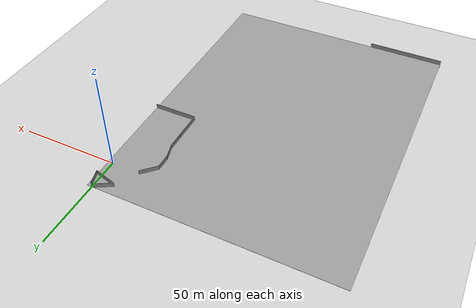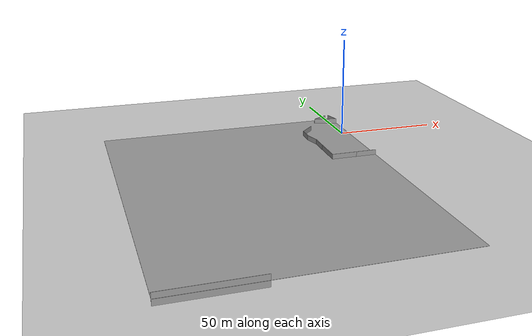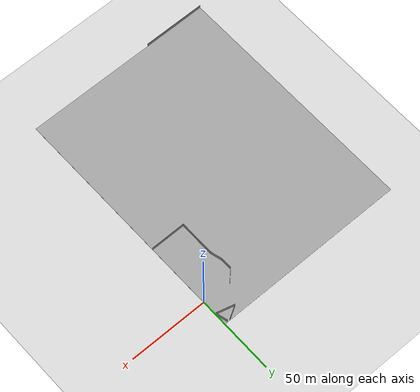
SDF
<sdf version="1.7">
 <world name="default">
  <light name="sun" type="directional">
   <pose>0 0 10 0 -0 0</pose>
   <diffuse>0.8 0.8 0.8 1</diffuse>
   <specular>0.2 0.2 0.2 1</specular>
   <attenuation>
    <range>1000</range>
    <constant>0.9</constant>
    <linear>0.01</linear>
    <quadratic>0.001</quadratic>
   </attenuation>
   <direction>-0.5 0.1 -0.9</direction>
   <spot><inner_angle>0</inner_angle><outer_angle>0</outer_angle><falloff>0</falloff></spot>
  </light>
  <model name="ground_plane">
   <static>1</static>
   <link name="link">
    <collision name="collision">
     <laser_retro>100</laser_retro>
     <geometry><plane><normal>0 0 1</normal><size>100 100</size></plane></geometry>
     <surface><friction><ode><mu>100</mu><mu2>50</mu2></ode></friction></surface>
    </collision>
    <visual name="visual">
     <laser_retro>100</laser_retro>
     <cast_shadows>0</cast_shadows>
     <geometry><plane><normal>0 0 1</normal><size>100 100</size></plane></geometry>
     <material>
      <script><uri>file://media/materials/scripts/gazebo.material</uri><name>Gazebo/Grey</name></script>
     </material>
    </visual>
   </link>
  </model>
  <gravity>0 0 -9.8</gravity>
  <magnetic_field>6e-06 2.3e-05 -4.2e-05</magnetic_field>
  <atmosphere type="adiabatic"/>
  <physics type="ode">
   <max_step_size>0.001</max_step_size>
   <real_time_factor>1</real_time_factor>
   <real_time_update_rate>1000</real_time_update_rate>
  </physics>
  <scene><ambient>0.4 0.4 0.4 1</ambient><background>0.7 0.7 0.7 1</background><shadows>1</shadows></scene>
  <audio><device>default</device></audio>
  <spherical_coordinates>
   <surface_model>EARTH_WGS84</surface_model>
   <latitude_deg>0</latitude_deg>
   <longitude_deg>0</longitude_deg>
   <elevation>0</elevation>
   <heading_deg>0</heading_deg>
  </spherical_coordinates>
  <model name="Untitled_0">
   <pose>-60.3047 -61.8542 0 0 -0 0</pose>
   <link name="Floor_3">
    <collision name="Floor_3_Collision">
     <geometry><box><size>122.467 159.514 0.1</size></box></geometry>
     <pose>0 0 0.05 0 -0 0</pose>
    </collision>
    <visual name="Floor_3_Visual">
     <pose>0 0 0.05 0 -0 0</pose>
     <geometry><box><size>122.467 159.514 0.1</size></box></geometry>
     <material>
      <script><uri>file://media/materials/scripts/gazebo.material</uri><name>Gazebo/Grey</name></script>
      <ambient>1 1 1 1</ambient>
     </material>
     <meta><layer>1</layer></meta>
    </visual>
    <pose>0 -2e-06 2.5 0 -0 0</pose>
   </link>
   <link name="Wall_38">
    <collision name="Wall_38_Collision">
     <geometry><box><size>39.75 0.15 2.5</size></box></geometry>
     <pose>0 0 1.25 0 -0 0</pose>
    </collision>
    <visual name="Wall_38_Visual">
     <pose>0 0 1.25 0 -0 0</pose>
     <geometry><box><size>39.75 0.15 2.5</size></box></geometry>
     <material>
      <script><uri>file://media/materials/scripts/gazebo.material</uri><name>Gazebo/Grey</name></script>
      <ambient>1 1 1 1</ambient>
     </material>
     <meta><layer>0</layer></meta>
    </visual>
    <pose>-41.3584 -79.682 0 0 -0 0</pose>
   </link>
   <link name="Wall_40">
    <collision name="Wall_40_Collision">
     <geometry><box><size>39.75 0.15 2.5</size></box></geometry>
     <pose>0 0 1.25 0 -0 0</pose>
    </collision>
    <visual name="Wall_40_Visual">
     <pose>0 0 1.25 0 -0 0</pose>
     <geometry><box><size>39.75 0.15 2.5</size></box></geometry>
     <material>
      <script><uri>file://media/materials/scripts/gazebo.material</uri><name>Gazebo/Grey</name></script>
      <ambient>1 1 1 1</ambient>
     </material>
     <meta><layer>1</layer></meta>
    </visual>
    <pose>-41.3584 -79.682 2.5 0 -0 0</pose>
   </link>
   <link name="Wall_42">
    <collision name="Wall_42_Collision">
     <geometry><box><size>9.5 0.15 2.5</size></box></geometry>
     <pose>0 0 1.25 0 -0 0</pose>
    </collision>
    <visual name="Wall_42_Visual">
     <pose>0 0 1.25 0 -0 0</pose>
     <geometry><box><size>9.5 0.15 2.5</size></box></geometry>
     <material>
      <script><uri>file://media/materials/scripts/gazebo.material</uri><name>Gazebo/Grey</name></script>
      <ambient>1 1 1 1</ambient>
     </material>
     <meta><layer>1</layer></meta>
    </visual>
    <pose>40.6118 60.8686 2.5 0 -0 -2.35619</pose>
   </link>
   <link name="Wall_43">
    <collision name="Wall_43_Collision">
     <geometry><box><size>7.25 0.15 2.5</size></box></geometry>
     <pose>0 0 1.25 0 -0 0</pose>
    </collision>
    <visual name="Wall_43_Visual">
     <pose>0 0 1.25 0 -0 0</pose>
     <geometry><box><size>7.25 0.15 2.5</size></box></geometry>
     <material>
      <script><uri>file://media/materials/scripts/gazebo.material</uri><name>Gazebo/Grey</name></script>
      <ambient>1 1 1 1</ambient>
     </material>
     <meta><layer>1</layer></meta>
    </visual>
    <pose>37.306 54.0128 2.5 0 -0 -1.5708</pose>
   </link>
   <link name="Wall_44">
    <collision name="Wall_44_Collision">
     <geometry><box><size>7.5 0.15 2.5</size></box></geometry>
     <pose>0 0 1.25 0 -0 0</pose>
    </collision>
    <visual name="Wall_44_Visual">
     <pose>0 0 1.25 0 -0 0</pose>
     <geometry><box><size>7.5 0.15 2.5</size></box></geometry>
     <material>
      <script><uri>file://media/materials/scripts/gazebo.material</uri><name>Gazebo/Grey</name></script>
      <ambient>1 1 1 1</ambient>
     </material>
     <meta><layer>1</layer></meta>
    </visual>
    <pose>38.2572 46.9131 2.5 0 -0 -1.309</pose>
   </link>
   <link name="Wall_45">
    <collision name="Wall_45_Collision">
     <geometry><box><size>8.5 0.15 2.5</size></box></geometry>
     <pose>0 0 1.25 0 -0 0</pose>
    </collision>
    <visual name="Wall_45_Visual">
     <pose>0 0 1.25 0 -0 0</pose>
     <geometry><box><size>8.5 0.15 2.5</size></box></geometry>
     <material>
      <script><uri>file://media/materials/scripts/gazebo.material</uri><name>Gazebo/Grey</name></script>
      <ambient>1 1 1 1</ambient>
     </material>
     <meta><layer>1</layer></meta>
    </visual>
    <pose>39.2084 39.1883 2.5 0 -0 -1.5708</pose>
   </link>
   <link name="Wall_46">
    <collision name="Wall_46_Collision">
     <geometry><box><size>14.25 0.15 2.5</size></box></geometry>
     <pose>0 0 1.25 0 -0 0</pose>
    </collision>
    <visual name="Wall_46_Visual">
     <pose>0 0 1.25 0 -0 0</pose>
     <geometry><box><size>14.25 0.15 2.5</size></box></geometry>
     <material>
      <script><uri>file://media/materials/scripts/gazebo.material</uri><name>Gazebo/Grey</name></script>
      <ambient>1 1 1 1</ambient>
     </material>
     <meta><layer>1</layer></meta>
    </visual>
    <pose>39.2084 27.9633 2.5 0 -0 -1.5708</pose>
   </link>
   <link name="Wall_47">
    <collision name="Wall_47_Collision">
     <geometry><box><size>12.25 0.15 2.5</size></box></geometry>
     <pose>0 0 1.25 0 -0 0</pose>
    </collision>
    <visual name="Wall_47_Visual">
     <pose>0 0 1.25 0 -0 0</pose>
     <geometry><box><size>12.25 0.15 2.5</size></box></geometry>
     <material>
      <script><uri>file://media/materials/scripts/gazebo.material</uri><name>Gazebo/Grey</name></script>
      <ambient>1 1 1 1</ambient>
     </material>
     <meta><layer>1</layer></meta>
    </visual>
    <pose>45.2584 20.9133 2.5 0 -0 0</pose>
   </link>
   <link name="Wall_48">
    <collision name="Wall_48_Collision">
     <geometry><box><size>10 0.15 2.5</size></box></geometry>
     <pose>0 0 1.25 0 -0 0</pose>
    </collision>
    <visual name="Wall_48_Visual">
     <pose>0 0 1.25 0 -0 0</pose>
     <geometry><box><size>10 0.15 2.5</size></box></geometry>
     <material>
      <script><uri>file://media/materials/scripts/gazebo.material</uri><name>Gazebo/Grey</name></script>
      <ambient>1 1 1 1</ambient>
     </material>
     <meta><layer>1</layer></meta>
    </visual>
    <pose>56.2334 20.9133 2.5 0 -0 0</pose>
   </link>
   <link name="Wall_50">
    <collision name="Wall_50_Collision">
     <geometry><box><size>7.5 0.15 2.5</size></box></geometry>
     <pose>0 0 1.25 0 -0 0</pose>
    </collision>
    <visual name="Wall_50_Visual">
     <pose>0 0 1.25 0 -0 0</pose>
     <geometry><box><size>7.5 0.15 2.5</size></box></geometry>
     <material>
      <script><uri>file://media/materials/scripts/gazebo.material</uri><name>Gazebo/Grey</name></script>
      <ambient>1 1 1 1</ambient>
     </material>
     <meta><layer>1</layer></meta>
    </visual>
    <pose>60.0948 75.7771 2.5 0 -0 -1.309</pose>
   </link>
   <link name="Wall_51">
    <collision name="Wall_51_Collision">
     <geometry><box><size>11.75 0.15 2.5</size></box></geometry>
     <pose>0 0 1.25 0 -0 0</pose>
    </collision>
    <visual name="Wall_51_Visual">
     <pose>0 0 1.25 0 -0 0</pose>
     <geometry><box><size>11.75 0.15 2.5</size></box></geometry>
     <material>
      <script><uri>file://media/materials/scripts/gazebo.material</uri><name>Gazebo/Grey</name></script>
      <ambient>1 1 1 1</ambient>
     </material>
     <meta><layer>1</layer></meta>
    </visual>
    <pose>55.4436 73.7284 2.5 0 -0 2.87979</pose>
   </link>
   <link name="Wall_52">
    <collision name="Wall_52_Collision">
     <geometry><box><size>9 0.15 2.5</size></box></geometry>
     <pose>0 0 1.25 0 -0 0</pose>
    </collision>
    <visual name="Wall_52_Visual">
     <pose>0 0 1.25 0 -0 0</pose>
     <geometry><box><size>9 0.15 2.5</size></box></geometry>
     <material>
      <script><uri>file://media/materials/scripts/gazebo.material</uri><name>Gazebo/Grey</name></script>
      <ambient>1 1 1 1</ambient>
     </material>
     <meta><layer>1</layer></meta>
    </visual>
    <pose>53.6734 77.4421 2.5 0 -0 0.523599</pose>
   </link>
   <static>1</static>
  </model>
 </world>
</sdf>
